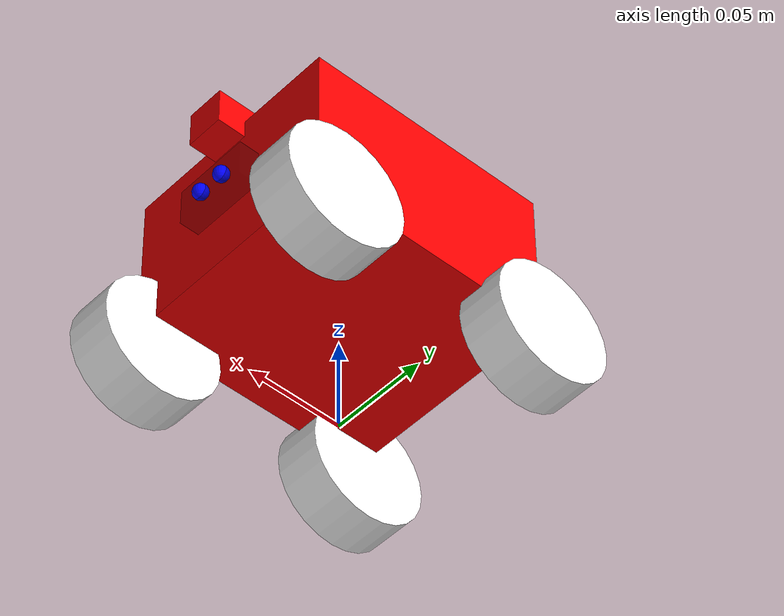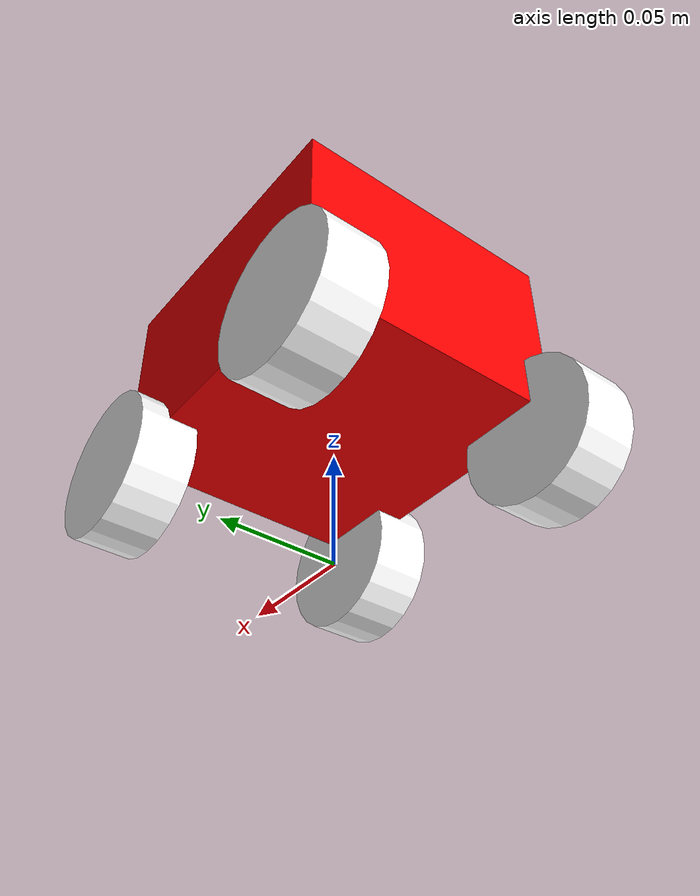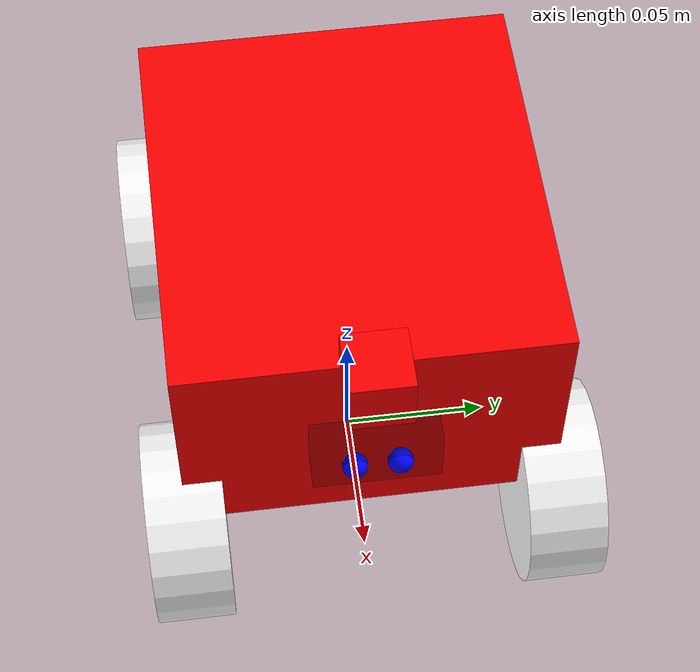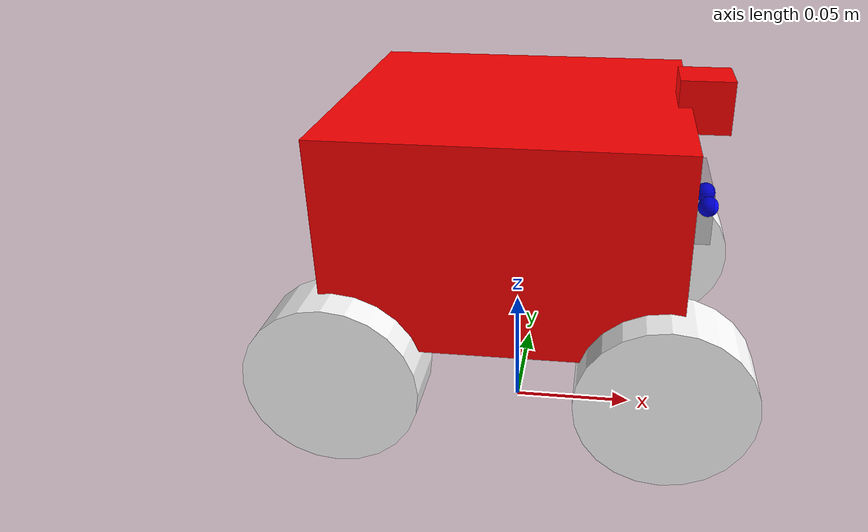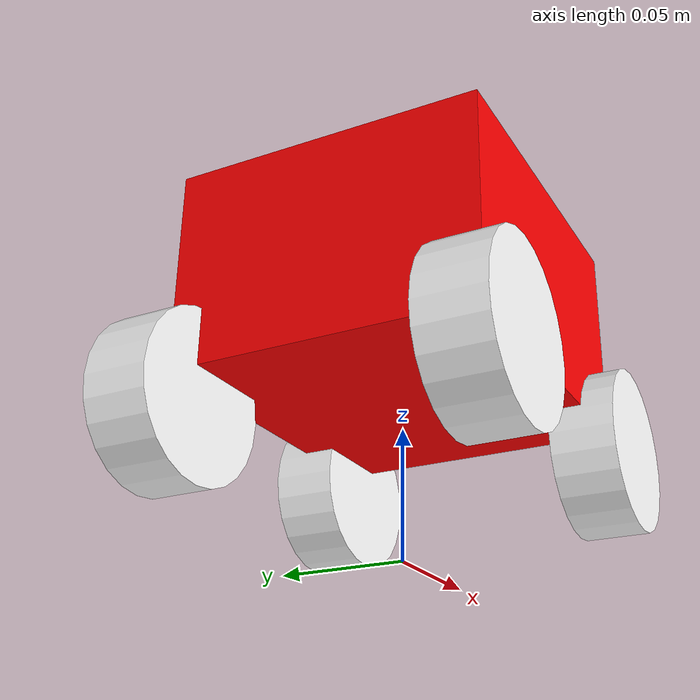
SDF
<?xml version="1.0" ?>
<sdf version="1.6">
  <model name='smart_car'>
    <pose>0.0 0.0 0.1 0 0 0</pose>
    <link name='base_link'>
      <collision name='collision'>
        <geometry>
          <box>
            <size>0.13 0.12 0.08</size>
          </box>
        </geometry>
      </collision>
      <inertial>
        <mass>0.55</mass>
        <inertia>
          <ixx>0.0227</ixx>
          <ixy>0</ixy>
          <ixz>0</ixz>
          <iyy>0.0852</iyy>
          <iyz>0</iyz>
          <izz>0.1041</izz>
        </inertia>
        <pose> 0.0 0.0125 0.0 0.0 0.0</pose>
      </inertial>
      <visual name='visual'>
        <geometry>
          <box>
            <size>0.13 0.12 0.08</size>
          </box>
        </geometry>
        <material>
          <diffuse>1 0 0 1</diffuse>
          <ambient>1 0 0 1</ambient>
          <specular>1 1 1 1</specular>
          <emissive>0 0 0 1</emissive>
        </material>
      </visual>
    </link>

    <link name="camera_link">
      <pose>0.07 0.0 0.04 0 0 0</pose>
      <visual name='visual'>
        <geometry>
          <box>
            <size>0.02 0.02 0.02</size>
          </box>
        </geometry>
        <material>
          <diffuse>1 0 0 1</diffuse>
          <ambient>1 1 0 1</ambient>
          <specular>1 1 1 1</specular>
          <emissive>0 1 0 1</emissive>
        </material>
      </visual>
      <collision name='collision'>
        <geometry>
          <box>
            <size>0.02 0.02 0.02</size>
          </box>
        </geometry>
      </collision>
      <inertial>
        <mass>0.55</mass>
        <inertia>
          <ixx>0.0227</ixx>
          <ixy>0</ixy>
          <ixz>0</ixz>
          <iyy>0.0852</iyy>
          <iyz>0</iyz>
          <izz>0.1041</izz>
        </inertia>
      </inertial>

      <sensor type="camera" name="sensor_cam">
        <pose>0.02 0 0 0 0 0</pose>
        <visualize>false</visualize>
        <always_on>1</always_on>
        <update_rate>1</update_rate>

        <camera name="camera">
          <distortion>
            <k1>0</k1>
            <k2>0</k2>
            <k3>0</k3>
            <p1>0</p1>
            <p2>0</p2>
            <center>0.5 0.5</center>
          </distortion>
          <image>
            <width>1920</width>
            <height>1080</height>
            <format>R8G8B8</format>
          </image>
        </camera>

      </sensor>
    </link>

    <joint name='camera_joint' type='fixed'>
      <parent>base_link</parent>
      <child>camera_link</child>
    </joint>

    <!-- Ultrasonic element -->
    <link name="ultrasonic_link">
      <pose>0.07 0.0 0.0 0 0 0</pose>
      <visual name='visual'>
        <geometry>
          <box>
            <size>0.011 0.04 0.02</size>
          </box>
        </geometry>
        <material>
          <ambient>0 0 0 0.2</ambient>
        </material>
      </visual>
      <visual name='visual_p1'>
        <pose>0.005 -0.007 0.0 0 0 0</pose>
        <geometry>
          <sphere>
            <radius>0.004</radius>
          </sphere>
        </geometry>
        <material>
          <diffuse>0 0 1 1</diffuse>
          <ambient>0 0 1 1</ambient>
          <specular>1 1 1 1</specular>
          <emissive>0 0 1 1</emissive>
        </material>
      </visual>
      <visual name='visual_p2'>
        <pose>0.005 0.007 0.0 0 0 0</pose>
        <geometry>
          <sphere>
            <radius>0.004</radius>
          </sphere>
        </geometry>
        <material>
          <diffuse>0 0 1 1</diffuse>
          <ambient>0 0 1 1</ambient>
          <specular>1 1 1 1</specular>
          <emissive>0 0 1 1</emissive>
        </material>
      </visual>
      <collision name='collision'>
        <geometry>
          <box>
            <size>0.012 0.04 0.02</size>
          </box>
        </geometry>
      </collision>
      <inertial>
        <mass>0.55</mass>
        <inertia>
          <ixx>0.0227</ixx>
          <ixy>0</ixy>
          <ixz>0</ixz>
          <iyy>0.0852</iyy>
          <iyz>0</iyz>
          <izz>0.1041</izz>
        </inertia>
      </inertial>

      <sensor name="sensor_ray" type="ray">
        <pose>0.001 0 0 0 0 0</pose>
        <ray>
          <scan>
            <horizontal>
              <samples>200</samples>
              <resolution>1.0</resolution>
              <min_angle>-0.25</min_angle>
              <max_angle>0.25</max_angle>
            </horizontal>
          </scan>
          <range>
            <min>0.03</min>
            <max>4.0</max>
          </range>
        </ray>
        <always_on>true</always_on>
        <visualize>true</visualize>
        <update_rate>100.0</update_rate>
        <plugin name="range" filename="libgazebo_ros_ray_sensor.so">
          <ros>
            <remapping>~/out:=range</remapping>
          </ros>
          <output_type>sensor_msgs/Range</output_type>
          <frame_name>odom</frame_name>
        </plugin>
        <plugin name="laser" filename="libgazebo_ros_ray_sensor.so">
          <ros>
            <remapping>~/out:=laser_scan</remapping>
          </ros>
          <output_type>sensor_msgs/LaserScan</output_type>
          <frame_name>odom</frame_name>
        </plugin>
      </sensor>
    </link>

    <joint name='ultrasonic_joint' type='fixed'>
      <parent>base_link</parent>
      <child>ultrasonic_link</child>
    </joint>

    <link name='left_wheel'>
      <pose>0.06 0.06 -0.05 1.5708 0 0</pose>
      <inertial>
        <mass>0.5</mass>
        <inertia>
          <ixx>0.0029</ixx>
          <ixy>0</ixy>
          <ixz>0</ixz>
          <iyy>0.0029</iyy>
          <iyz>0</iyz>
          <izz>0.0056</izz>
        </inertia>
      </inertial>
      <visual name='visual'>
        <geometry>
          <cylinder>
            <radius>0.0325</radius>
            <length>0.025</length>
          </cylinder>
        </geometry>
        <material>
          <diffuse>1 1 1 1</diffuse>
          <ambient>0 0 0 1</ambient>
          <specular>1 1 1 1</specular>
          <emissive>0 0 0 1</emissive>
        </material>
      </visual>
      <collision name='collision'>
        <geometry>
          <sphere>
            <radius>0.0325</radius>
          </sphere>
        </geometry>
        <surface>
          <friction>
            <ode>
              <mu>1</mu>
              <mu2>1</mu2>
              <slip1>0</slip1>
              <slip2>0</slip2>
            </ode>
          </friction>
          <contact>
            <ode>
              <soft_cfm>0</soft_cfm>
              <soft_erp>0.2</soft_erp>
              <kp>1e+13</kp>
              <kd>1</kd>
              <max_vel>0.01</max_vel>
              <min_depth>0.01</min_depth>
            </ode>
          </contact>
        </surface>
      </collision>
    </link>

    <link name='right_wheel'>
      <pose>0.06 -0.06 -0.05 1.5708 0 0</pose>
      <inertial>
        <mass>0.5</mass>
        <inertia>
          <ixx>0.0029</ixx>
          <ixy>0</ixy>
          <ixz>0</ixz>
          <iyy>0.0029</iyy>
          <iyz>0</iyz>
          <izz>0.0056</izz>
        </inertia>
      </inertial>
      <visual name='visual'>
        <geometry>
          <cylinder>
            <radius>0.0325</radius>
            <length>0.025</length>
          </cylinder>
        </geometry>
        <material>
          <diffuse>1 1 1 1</diffuse>
          <ambient>0 0 0 1</ambient>
          <specular>1 1 1 1</specular>
          <emissive>0 0 0 1</emissive>
        </material>
      </visual>
      <collision name='collision'>
        <geometry>
          <sphere>
            <radius>0.0325</radius>
          </sphere>
        </geometry>
        <surface>
          <friction>
            <ode>
              <mu>1</mu>
              <mu2>1</mu2>
              <slip1>0</slip1>
              <slip2>0</slip2>
            </ode>
          </friction>
          <contact>
            <ode>
              <soft_cfm>0</soft_cfm>
              <soft_erp>0.2</soft_erp>
              <kp>1e+13</kp>
              <kd>1</kd>
              <max_vel>0.01</max_vel>
              <min_depth>0.01</min_depth>
            </ode>
          </contact>
        </surface>
      </collision>
    </link>

    <joint name='left_wheel_joint' type='revolute'>
      <parent>base_link</parent>
      <child>left_wheel</child>
      <axis>
        <xyz>0 0 -1</xyz>
        <limit>
          <lower>-1.79769e+308</lower>
          <upper>1.79769e+308</upper>
        </limit>
      </axis>
    </joint>

    <joint name='right_wheel_joint' type='revolute'>
      <parent>base_link</parent>
      <child>right_wheel</child>
      <axis>
        <xyz>0 0 -1</xyz>
        <limit>
          <lower>-1.79769e+308</lower>
          <upper>1.79769e+308</upper>
        </limit>
      </axis>
    </joint>

    <!-- 2 wheels more-->
    <link name='left_wheel_2'>
      <pose>-0.06 0.06 -0.05 1.5708 0 0</pose>
      <inertial>
        <mass>0.5</mass>
        <inertia>
          <ixx>0.0029</ixx>
          <ixy>0</ixy>
          <ixz>0</ixz>
          <iyy>0.0029</iyy>
          <iyz>0</iyz>
          <izz>0.0056</izz>
        </inertia>
      </inertial>
      <visual name='visual'>
        <geometry>
          <cylinder>
            <radius>0.0325</radius>
            <length>0.025</length>
          </cylinder>
        </geometry>
        <material>
          <diffuse>1 1 1 1</diffuse>
          <ambient>0 0 0 1</ambient>
          <specular>1 1 1 1</specular>
          <emissive>0 0 0 1</emissive>
        </material>
      </visual>
      <collision name='collision'>
        <geometry>
          <sphere>
            <radius>0.0325</radius>
          </sphere>
        </geometry>
        <surface>
          <friction>
            <ode>
              <mu>1</mu>
              <mu2>1</mu2>
              <slip1>0</slip1>
              <slip2>0</slip2>
            </ode>
          </friction>
          <contact>
            <ode>
              <soft_cfm>0</soft_cfm>
              <soft_erp>0.2</soft_erp>
              <kp>1e+13</kp>
              <kd>1</kd>
              <max_vel>0.01</max_vel>
              <min_depth>0.01</min_depth>
            </ode>
          </contact>
        </surface>
      </collision>
    </link>

    <link name='right_wheel_2'>
      <pose>-0.06 -0.06 -0.05 1.5708 0 0</pose>
      <inertial>
        <mass>0.5</mass>
        <inertia>
          <ixx>0.0029</ixx>
          <ixy>0</ixy>
          <ixz>0</ixz>
          <iyy>0.0029</iyy>
          <iyz>0</iyz>
          <izz>0.0056</izz>
        </inertia>
      </inertial>
      <visual name='visual'>
        <geometry>
          <cylinder>
            <radius>0.0325</radius>
            <length>0.025</length>
          </cylinder>
        </geometry>
        <material>
          <diffuse>1 1 1 1</diffuse>
          <ambient>0 0 0 1</ambient>
          <specular>1 1 1 1</specular>
          <emissive>0 0 0 1</emissive>
        </material>
      </visual>
      <collision name='collision'>
        <geometry>
          <sphere>
            <radius>0.0325</radius>
          </sphere>
        </geometry>
        <surface>
          <friction>
            <ode>
              <mu>1</mu>
              <mu2>1</mu2>
              <slip1>0</slip1>
              <slip2>0</slip2>
            </ode>
          </friction>
          <contact>
            <ode>
              <soft_cfm>0</soft_cfm>
              <soft_erp>0.2</soft_erp>
              <kp>1e+13</kp>
              <kd>1</kd>
              <max_vel>0.01</max_vel>
              <min_depth>0.01</min_depth>
            </ode>
          </contact>
        </surface>
      </collision>
    </link>

    <joint name='left_wheel_joint_2' type='revolute'>
      <parent>base_link</parent>
      <child>left_wheel_2</child>
      <axis>
        <xyz>0 0 -1</xyz>
        <limit>
          <lower>-1.79769e+308</lower>
          <upper>1.79769e+308</upper>
        </limit>
      </axis>
    </joint>

    <joint name='right_wheel_joint_2' type='revolute'>
      <parent>base_link</parent>
      <child>right_wheel_2</child>
      <axis>
        <xyz>0 0 -1</xyz>
        <limit>
          <lower>-1.79769e+308</lower>
          <upper>1.79769e+308</upper>
        </limit>
      </axis>
    </joint>

    <!-- Gazebo_ROS plugin for movement control -->
    <plugin name='diff_drive' filename='libgazebo_ros_diff_drive.so'>

      <ros>
      </ros>

      <!-- Number of wheel pairs -->
      <num_wheel_pairs>2</num_wheel_pairs>

      <!-- wheels -->
      <left_joint>left_wheel_joint</left_joint>
      <right_joint>right_wheel_joint</right_joint>

      <left_joint>left_wheel_joint_2</left_joint>
      <right_joint>right_wheel_joint_2</right_joint>

      <!-- kinematics -->
      <wheel_separation>0.150</wheel_separation>
      <wheel_diameter>0.065</wheel_diameter>

      <wheel_separation>0.150</wheel_separation>
      <wheel_diameter>0.065</wheel_diameter>

      <!-- limits -->
      <max_wheel_torque>20</max_wheel_torque>
      <max_wheel_acceleration>1.0</max_wheel_acceleration>

      <!-- output -->
      <publish_odom>true</publish_odom>
      <publish_odom_tf>true</publish_odom_tf>
      <publish_wheel_tf>true</publish_wheel_tf>

      <odometry_frame>odom</odometry_frame>
      <robot_base_frame>base_link</robot_base_frame>

    </plugin>

  </model>
</sdf>
